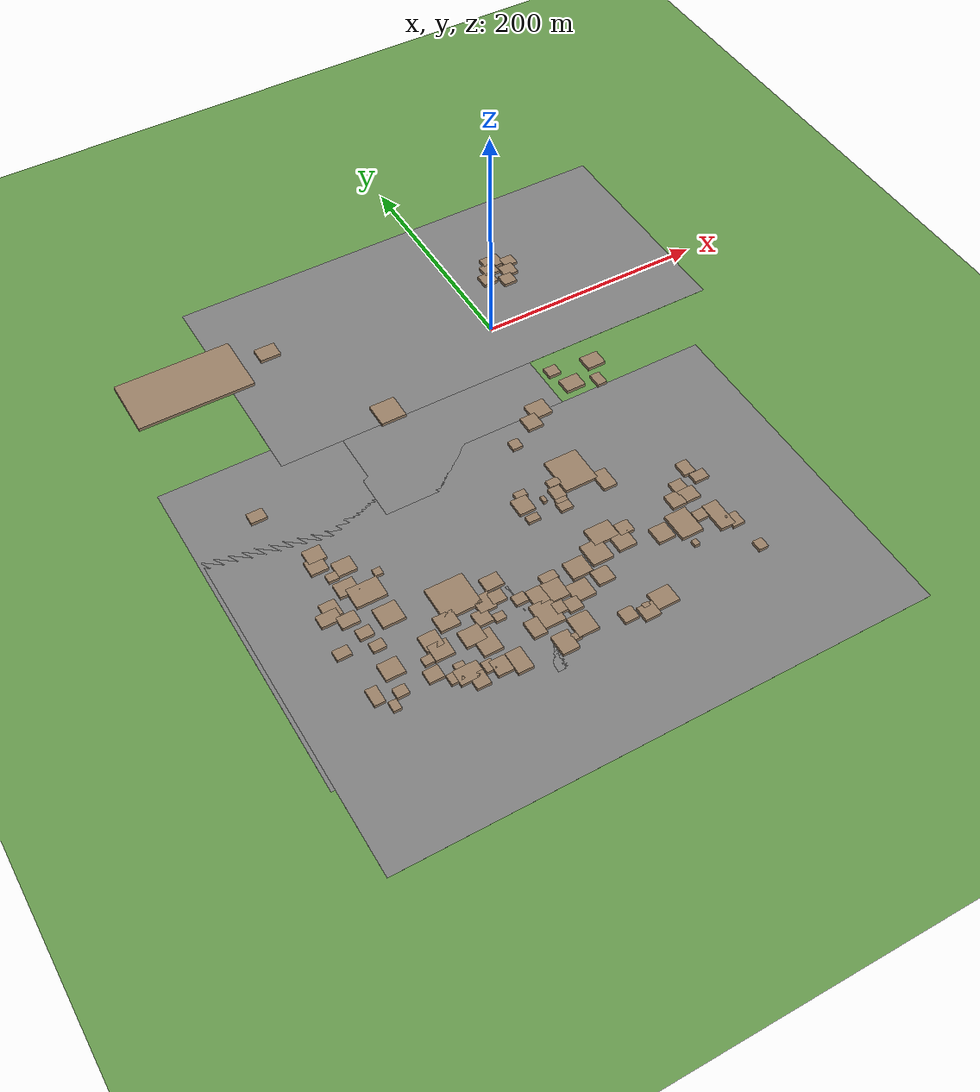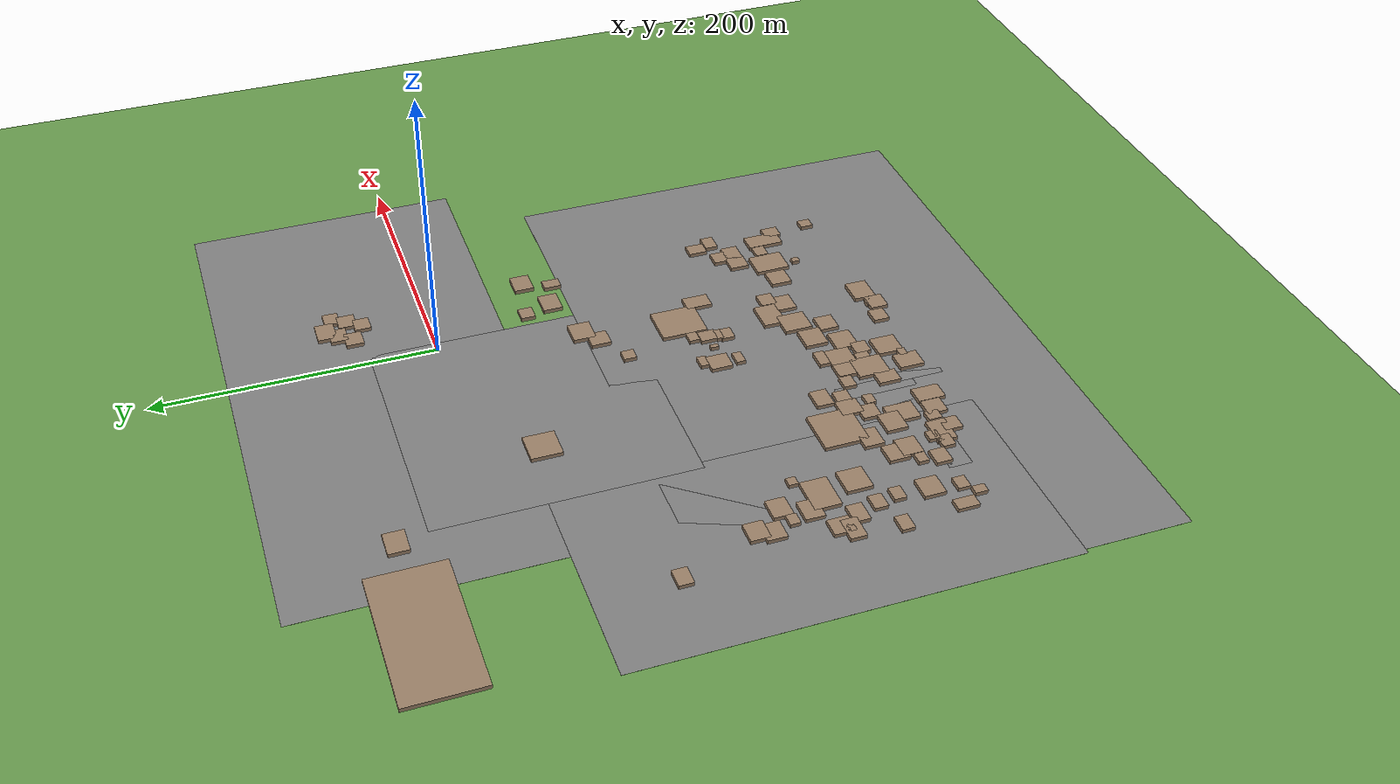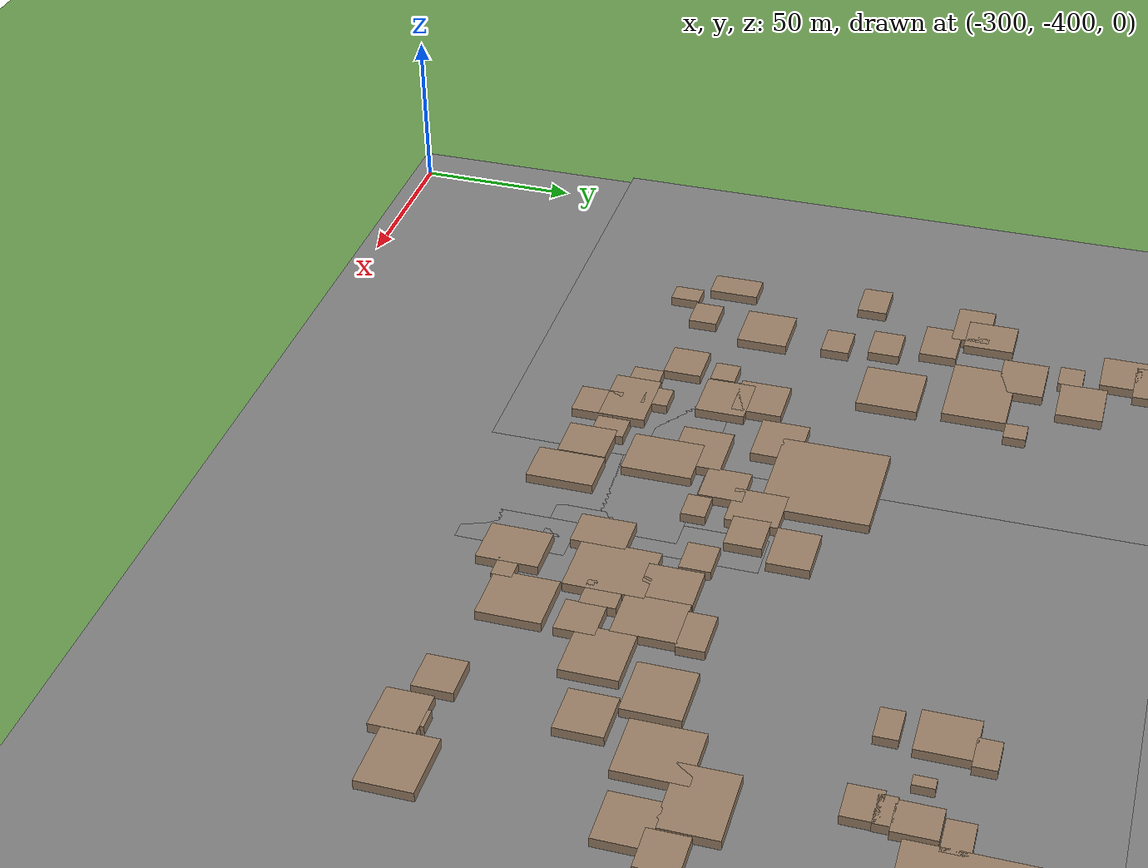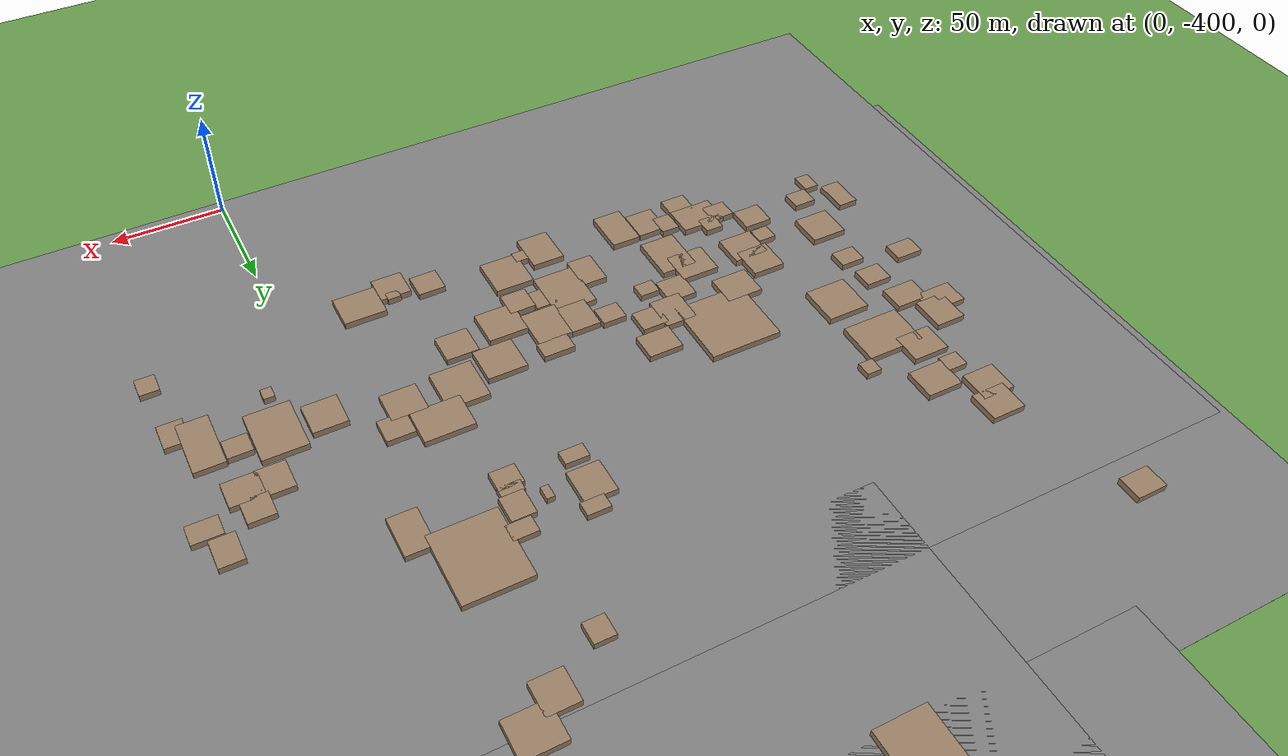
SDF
<sdf version="1.9">
 <world name="kimje_farmland">
  <model name="ground_plane">
   <static>true</static>
   <link name="link">
    <collision name="collision">
     <geometry><plane><normal>0 0 1</normal><size>2000 2000</size></plane></geometry>
    </collision>
    <visual name="visual">
     <geometry><plane><normal>0 0 1</normal><size>2000 2000</size></plane></geometry>
     <material><ambient>0.4 0.6 0.3 1</ambient><diffuse>0.4 0.6 0.3 1</diffuse></material>
    </visual>
   </link>
  </model>
  <model name="osm_5">
   <static>true</static>
   <pose>-86.99 -253.93 0.040 0 0 0</pose>
   <link name="link">
    <collision name="collision"><geometry><box><size>451.55 303.87 0.080</size></box></geometry></collision>
    <visual name="visual">
     <geometry><box><size>451.55 303.87 0.080</size></box></geometry>
     <material><ambient>0.5 0.5 0.5 1</ambient><diffuse>0.5 0.5 0.5 1</diffuse></material>
    </visual>
   </link>
  </model>
  <model name="osm_13">
   <static>true</static>
   <pose>-18.24 48.11 0.040 0 0 0</pose>
   <link name="link">
    <collision name="collision"><geometry><box><size>402.49 196.32 0.080</size></box></geometry></collision>
    <visual name="visual">
     <geometry><box><size>402.49 196.32 0.080</size></box></geometry>
     <material><ambient>0.5 0.5 0.5 1</ambient><diffuse>0.5 0.5 0.5 1</diffuse></material>
    </visual>
   </link>
  </model>
  <model name="osm_58">
   <static>true</static>
   <pose>-176.56 -283.62 0.040 0 0 0</pose>
   <link name="link">
    <collision name="collision"><geometry><box><size>89.69 36.30 0.080</size></box></geometry></collision>
    <visual name="visual">
     <geometry><box><size>89.69 36.30 0.080</size></box></geometry>
     <material><ambient>0.5 0.5 0.5 1</ambient><diffuse>0.5 0.5 0.5 1</diffuse></material>
    </visual>
   </link>
  </model>
  <model name="osm_63">
   <static>true</static>
   <pose>-240.82 -180.44 0.040 0 0 0</pose>
   <link name="link">
    <collision name="collision"><geometry><box><size>150.24 300.62 0.080</size></box></geometry></collision>
    <visual name="visual">
     <geometry><box><size>150.24 300.62 0.080</size></box></geometry>
     <material><ambient>0.5 0.5 0.5 1</ambient><diffuse>0.5 0.5 0.5 1</diffuse></material>
    </visual>
   </link>
  </model>
  <model name="osm_90">
   <static>true</static>
   <pose>-81.72 -44.00 0.040 0 0 0</pose>
   <link name="link">
    <collision name="collision"><geometry><box><size>178.89 182.53 0.080</size></box></geometry></collision>
    <visual name="visual">
     <geometry><box><size>178.89 182.53 0.080</size></box></geometry>
     <material><ambient>0.5 0.5 0.5 1</ambient><diffuse>0.5 0.5 0.5 1</diffuse></material>
    </visual>
   </link>
  </model>
  <model name="osm_119">
   <static>true</static>
   <pose>-125.84 -309.64 0.040 0 0 0</pose>
   <link name="link">
    <collision name="collision"><geometry><box><size>14.23 31.51 0.080</size></box></geometry></collision>
    <visual name="visual">
     <geometry><box><size>14.23 31.51 0.080</size></box></geometry>
     <material><ambient>0.5 0.5 0.5 1</ambient><diffuse>0.5 0.5 0.5 1</diffuse></material>
    </visual>
   </link>
  </model>
  <model name="osm_120">
   <static>true</static>
   <pose>-132.73 -271.68 0.040 0 0 0</pose>
   <link name="link">
    <collision name="collision"><geometry><box><size>13.80 61.15 0.080</size></box></geometry></collision>
    <visual name="visual">
     <geometry><box><size>13.80 61.15 0.080</size></box></geometry>
     <material><ambient>0.5 0.5 0.5 1</ambient><diffuse>0.5 0.5 0.5 1</diffuse></material>
    </visual>
   </link>
  </model>
  <model name="osm_140">
   <static>true</static>
   <pose>-250.95 67.74 1.500 0 0 0</pose>
   <link name="link">
    <collision name="collision"><geometry><box><size>101.71 53.53 3.000</size></box></geometry></collision>
    <visual name="visual">
     <geometry><box><size>101.71 53.53 3.000</size></box></geometry>
     <material><ambient>0.6 0.5 0.4 1</ambient><diffuse>0.6 0.5 0.4 1</diffuse></material>
    </visual>
   </link>
  </model>
  <model name="osm_542">
   <static>true</static>
   <pose>-176.11 68.46 1.500 0 0 0</pose>
   <link name="link">
    <collision name="collision"><geometry><box><size>18.13 14.38 3.000</size></box></geometry></collision>
    <visual name="visual">
     <geometry><box><size>18.13 14.38 3.000</size></box></geometry>
     <material><ambient>0.6 0.5 0.4 1</ambient><diffuse>0.6 0.5 0.4 1</diffuse></material>
    </visual>
   </link>
  </model>
  <model name="osm_545">
   <static>true</static>
   <pose>41.44 71.57 1.500 0 0 0</pose>
   <link name="link">
    <collision name="collision"><geometry><box><size>16.90 13.36 3.000</size></box></geometry></collision>
    <visual name="visual">
     <geometry><box><size>16.90 13.36 3.000</size></box></geometry>
     <material><ambient>0.6 0.5 0.4 1</ambient><diffuse>0.6 0.5 0.4 1</diffuse></material>
    </visual>
   </link>
  </model>
  <model name="osm_547">
   <static>true</static>
   <pose>34.76 63.75 1.500 0 0 0</pose>
   <link name="link">
    <collision name="collision"><geometry><box><size>13.43 12.23 3.000</size></box></geometry></collision>
    <visual name="visual">
     <geometry><box><size>13.43 12.23 3.000</size></box></geometry>
     <material><ambient>0.6 0.5 0.4 1</ambient><diffuse>0.6 0.5 0.4 1</diffuse></material>
    </visual>
   </link>
  </model>
  <model name="osm_548">
   <static>true</static>
   <pose>27.81 54.00 1.500 0 0 0</pose>
   <link name="link">
    <collision name="collision"><geometry><box><size>13.41 12.50 3.000</size></box></geometry></collision>
    <visual name="visual">
     <geometry><box><size>13.41 12.50 3.000</size></box></geometry>
     <material><ambient>0.6 0.5 0.4 1</ambient><diffuse>0.6 0.5 0.4 1</diffuse></material>
    </visual>
   </link>
  </model>
  <model name="osm_550">
   <static>true</static>
   <pose>54.67 65.28 1.500 0 0 0</pose>
   <link name="link">
    <collision name="collision"><geometry><box><size>11.88 10.88 3.000</size></box></geometry></collision>
    <visual name="visual">
     <geometry><box><size>11.88 10.88 3.000</size></box></geometry>
     <material><ambient>0.6 0.5 0.4 1</ambient><diffuse>0.6 0.5 0.4 1</diffuse></material>
    </visual>
   </link>
  </model>
  <model name="osm_551">
   <static>true</static>
   <pose>48.82 55.38 1.500 0 0 0</pose>
   <link name="link">
    <collision name="collision"><geometry><box><size>13.06 12.61 3.000</size></box></geometry></collision>
    <visual name="visual">
     <geometry><box><size>13.06 12.61 3.000</size></box></geometry>
     <material><ambient>0.6 0.5 0.4 1</ambient><diffuse>0.6 0.5 0.4 1</diffuse></material>
    </visual>
   </link>
  </model>
  <model name="osm_552">
   <static>true</static>
   <pose>42.54 45.43 1.500 0 0 0</pose>
   <link name="link">
    <collision name="collision"><geometry><box><size>12.13 11.61 3.000</size></box></geometry></collision>
    <visual name="visual">
     <geometry><box><size>12.13 11.61 3.000</size></box></geometry>
     <material><ambient>0.6 0.5 0.4 1</ambient><diffuse>0.6 0.5 0.4 1</diffuse></material>
    </visual>
   </link>
  </model>
  <model name="osm_582">
   <static>true</static>
   <pose>-258.33 -88.30 1.500 0 0 0</pose>
   <link name="link">
    <collision name="collision"><geometry><box><size>13.57 10.41 3.000</size></box></geometry></collision>
    <visual name="visual">
     <geometry><box><size>13.57 10.41 3.000</size></box></geometry>
     <material><ambient>0.6 0.5 0.4 1</ambient><diffuse>0.6 0.5 0.4 1</diffuse></material>
    </visual>
   </link>
  </model>
  <model name="osm_586">
   <static>true</static>
   <pose>-120.45 -41.31 1.500 0 0 0</pose>
   <link name="link">
    <collision name="collision"><geometry><box><size>22.05 22.01 3.000</size></box></geometry></collision>
    <visual name="visual">
     <geometry><box><size>22.05 22.01 3.000</size></box></geometry>
     <material><ambient>0.6 0.5 0.4 1</ambient><diffuse>0.6 0.5 0.4 1</diffuse></material>
    </visual>
   </link>
  </model>
  <model name="osm_587">
   <static>true</static>
   <pose>17.71 -69.66 1.500 0 0 0</pose>
   <link name="link">
    <collision name="collision"><geometry><box><size>11.02 10.27 3.000</size></box></geometry></collision>
    <visual name="visual">
     <geometry><box><size>11.02 10.27 3.000</size></box></geometry>
     <material><ambient>0.6 0.5 0.4 1</ambient><diffuse>0.6 0.5 0.4 1</diffuse></material>
    </visual>
   </link>
  </model>
  <model name="osm_588">
   <static>true</static>
   <pose>52.99 -75.82 1.500 0 0 0</pose>
   <link name="link">
    <collision name="collision"><geometry><box><size>16.47 14.05 3.000</size></box></geometry></collision>
    <visual name="visual">
     <geometry><box><size>16.47 14.05 3.000</size></box></geometry>
     <material><ambient>0.6 0.5 0.4 1</ambient><diffuse>0.6 0.5 0.4 1</diffuse></material>
    </visual>
   </link>
  </model>
  <model name="osm_589">
   <static>true</static>
   <pose>45.76 -96.53 1.500 0 0 0</pose>
   <link name="link">
    <collision name="collision"><geometry><box><size>8.71 12.59 3.000</size></box></geometry></collision>
    <visual name="visual">
     <geometry><box><size>8.71 12.59 3.000</size></box></geometry>
     <material><ambient>0.6 0.5 0.4 1</ambient><diffuse>0.6 0.5 0.4 1</diffuse></material>
    </visual>
   </link>
  </model>
  <model name="osm_590">
   <static>true</static>
   <pose>24.68 -89.26 1.500 0 0 0</pose>
   <link name="link">
    <collision name="collision"><geometry><box><size>17.26 13.97 3.000</size></box></geometry></collision>
    <visual name="visual">
     <geometry><box><size>17.26 13.97 3.000</size></box></geometry>
     <material><ambient>0.6 0.5 0.4 1</ambient><diffuse>0.6 0.5 0.4 1</diffuse></material>
    </visual>
   </link>
  </model>
  <model name="osm_591">
   <static>true</static>
   <pose>-14.75 -100.88 1.500 0 0 0</pose>
   <link name="link">
    <collision name="collision"><geometry><box><size>17.67 16.23 3.000</size></box></geometry></collision>
    <visual name="visual">
     <geometry><box><size>17.67 16.23 3.000</size></box></geometry>
     <material><ambient>0.6 0.5 0.4 1</ambient><diffuse>0.6 0.5 0.4 1</diffuse></material>
    </visual>
   </link>
  </model>
  <model name="osm_592">
   <static>true</static>
   <pose>-26.34 -110.19 1.500 0 0 0</pose>
   <link name="link">
    <collision name="collision"><geometry><box><size>13.56 14.28 3.000</size></box></geometry></collision>
    <visual name="visual">
     <geometry><box><size>13.56 14.28 3.000</size></box></geometry>
     <material><ambient>0.6 0.5 0.4 1</ambient><diffuse>0.6 0.5 0.4 1</diffuse></material>
    </visual>
   </link>
  </model>
  <model name="osm_609">
   <static>true</static>
   <pose>-237.07 -144.46 1.500 0 0 0</pose>
   <link name="link">
    <collision name="collision"><geometry><box><size>15.07 13.59 3.000</size></box></geometry></collision>
    <visual name="visual">
     <geometry><box><size>15.07 13.59 3.000</size></box></geometry>
     <material><ambient>0.6 0.5 0.4 1</ambient><diffuse>0.6 0.5 0.4 1</diffuse></material>
    </visual>
   </link>
  </model>
  <model name="osm_610">
   <static>true</static>
   <pose>-240.28 -154.42 1.500 0 0 0</pose>
   <link name="link">
    <collision name="collision"><geometry><box><size>14.50 13.81 3.000</size></box></geometry></collision>
    <visual name="visual">
     <geometry><box><size>14.50 13.81 3.000</size></box></geometry>
     <material><ambient>0.6 0.5 0.4 1</ambient><diffuse>0.6 0.5 0.4 1</diffuse></material>
    </visual>
   </link>
  </model>
  <model name="osm_611">
   <static>true</static>
   <pose>-222.67 -165.51 1.500 0 0 0</pose>
   <link name="link">
    <collision name="collision"><geometry><box><size>15.79 13.74 3.000</size></box></geometry></collision>
    <visual name="visual">
     <geometry><box><size>15.79 13.74 3.000</size></box></geometry>
     <material><ambient>0.6 0.5 0.4 1</ambient><diffuse>0.6 0.5 0.4 1</diffuse></material>
    </visual>
   </link>
  </model>
  <model name="osm_612">
   <static>true</static>
   <pose>-234.74 -169.87 1.500 0 0 0</pose>
   <link name="link">
    <collision name="collision"><geometry><box><size>8.64 7.35 3.000</size></box></geometry></collision>
    <visual name="visual">
     <geometry><box><size>8.64 7.35 3.000</size></box></geometry>
     <material><ambient>0.6 0.5 0.4 1</ambient><diffuse>0.6 0.5 0.4 1</diffuse></material>
    </visual>
   </link>
  </model>
  <model name="osm_613">
   <static>true</static>
   <pose>-230.11 -183.83 1.500 0 0 0</pose>
   <link name="link">
    <collision name="collision"><geometry><box><size>16.26 13.55 3.000</size></box></geometry></collision>
    <visual name="visual">
     <geometry><box><size>16.26 13.55 3.000</size></box></geometry>
     <material><ambient>0.6 0.5 0.4 1</ambient><diffuse>0.6 0.5 0.4 1</diffuse></material>
    </visual>
   </link>
  </model>
  <model name="osm_614">
   <static>true</static>
   <pose>-219.10 -195.26 1.500 0 0 0</pose>
   <link name="link">
    <collision name="collision"><geometry><box><size>25.57 18.97 3.000</size></box></geometry></collision>
    <visual name="visual">
     <geometry><box><size>25.57 18.97 3.000</size></box></geometry>
     <material><ambient>0.6 0.5 0.4 1</ambient><diffuse>0.6 0.5 0.4 1</diffuse></material>
    </visual>
   </link>
  </model>
  <model name="osm_615">
   <static>true</static>
   <pose>-203.22 -182.41 1.500 0 0 0</pose>
   <link name="link">
    <collision name="collision"><geometry><box><size>6.63 6.62 3.000</size></box></geometry></collision>
    <visual name="visual">
     <geometry><box><size>6.63 6.62 3.000</size></box></geometry>
     <material><ambient>0.6 0.5 0.4 1</ambient><diffuse>0.6 0.5 0.4 1</diffuse></material>
    </visual>
   </link>
  </model>
  <model name="osm_616">
   <static>true</static>
   <pose>-249.05 -196.23 1.500 0 0 0</pose>
   <link name="link">
    <collision name="collision"><geometry><box><size>13.21 15.06 3.000</size></box></geometry></collision>
    <visual name="visual">
     <geometry><box><size>13.21 15.06 3.000</size></box></geometry>
     <material><ambient>0.6 0.5 0.4 1</ambient><diffuse>0.6 0.5 0.4 1</diffuse></material>
    </visual>
   </link>
  </model>
  <model name="osm_619">
   <static>true</static>
   <pose>-50.09 -124.39 1.500 0 0 0</pose>
   <link name="link">
    <collision name="collision"><geometry><box><size>8.97 9.44 3.000</size></box></geometry></collision>
    <visual name="visual">
     <geometry><box><size>8.97 9.44 3.000</size></box></geometry>
     <material><ambient>0.6 0.5 0.4 1</ambient><diffuse>0.6 0.5 0.4 1</diffuse></material>
    </visual>
   </link>
  </model>
  <model name="osm_620">
   <static>true</static>
   <pose>-26.59 -169.93 1.500 0 0 0</pose>
   <link name="link">
    <collision name="collision"><geometry><box><size>28.82 33.17 3.000</size></box></geometry></collision>
    <visual name="visual">
     <geometry><box><size>28.82 33.17 3.000</size></box></geometry>
     <material><ambient>0.6 0.5 0.4 1</ambient><diffuse>0.6 0.5 0.4 1</diffuse></material>
    </visual>
   </link>
  </model>
  <model name="osm_621">
   <static>true</static>
   <pose>-8.57 -190.50 1.500 0 0 0</pose>
   <link name="link">
    <collision name="collision"><geometry><box><size>12.25 18.74 3.000</size></box></geometry></collision>
    <visual name="visual">
     <geometry><box><size>12.25 18.74 3.000</size></box></geometry>
     <material><ambient>0.6 0.5 0.4 1</ambient><diffuse>0.6 0.5 0.4 1</diffuse></material>
    </visual>
   </link>
  </model>
  <model name="osm_622">
   <static>true</static>
   <pose>-44.78 -173.75 1.500 0 0 0</pose>
   <link name="link">
    <collision name="collision"><geometry><box><size>10.58 7.57 3.000</size></box></geometry></collision>
    <visual name="visual">
     <geometry><box><size>10.58 7.57 3.000</size></box></geometry>
     <material><ambient>0.6 0.5 0.4 1</ambient><diffuse>0.6 0.5 0.4 1</diffuse></material>
    </visual>
   </link>
  </model>
  <model name="osm_623">
   <static>true</static>
   <pose>-47.66 -183.88 1.500 0 0 0</pose>
   <link name="link">
    <collision name="collision"><geometry><box><size>10.36 11.92 3.000</size></box></geometry></collision>
    <visual name="visual">
     <geometry><box><size>10.36 11.92 3.000</size></box></geometry>
     <material><ambient>0.6 0.5 0.4 1</ambient><diffuse>0.6 0.5 0.4 1</diffuse></material>
    </visual>
   </link>
  </model>
  <model name="osm_624">
   <static>true</static>
   <pose>-48.66 -191.85 1.500 0 0 0</pose>
   <link name="link">
    <collision name="collision"><geometry><box><size>9.67 4.93 3.000</size></box></geometry></collision>
    <visual name="visual">
     <geometry><box><size>9.67 4.93 3.000</size></box></geometry>
     <material><ambient>0.6 0.5 0.4 1</ambient><diffuse>0.6 0.5 0.4 1</diffuse></material>
    </visual>
   </link>
  </model>
  <model name="osm_625">
   <static>true</static>
   <pose>-49.40 -197.41 1.500 0 0 0</pose>
   <link name="link">
    <collision name="collision"><geometry><box><size>10.77 9.54 3.000</size></box></geometry></collision>
    <visual name="visual">
     <geometry><box><size>10.77 9.54 3.000</size></box></geometry>
     <material><ambient>0.6 0.5 0.4 1</ambient><diffuse>0.6 0.5 0.4 1</diffuse></material>
    </visual>
   </link>
  </model>
  <model name="osm_626">
   <static>true</static>
   <pose>-73.15 -171.13 1.500 0 0 0</pose>
   <link name="link">
    <collision name="collision"><geometry><box><size>9.99 6.48 3.000</size></box></geometry></collision>
    <visual name="visual">
     <geometry><box><size>9.99 6.48 3.000</size></box></geometry>
     <material><ambient>0.6 0.5 0.4 1</ambient><diffuse>0.6 0.5 0.4 1</diffuse></material>
    </visual>
   </link>
  </model>
  <model name="osm_627">
   <static>true</static>
   <pose>-76.95 -181.47 1.500 0 0 0</pose>
   <link name="link">
    <collision name="collision"><geometry><box><size>14.03 15.52 3.000</size></box></geometry></collision>
    <visual name="visual">
     <geometry><box><size>14.03 15.52 3.000</size></box></geometry>
     <material><ambient>0.6 0.5 0.4 1</ambient><diffuse>0.6 0.5 0.4 1</diffuse></material>
    </visual>
   </link>
  </model>
  <model name="osm_628">
   <static>true</static>
   <pose>-76.92 -196.13 1.500 0 0 0</pose>
   <link name="link">
    <collision name="collision"><geometry><box><size>10.40 6.55 3.000</size></box></geometry></collision>
    <visual name="visual">
     <geometry><box><size>10.40 6.55 3.000</size></box></geometry>
     <material><ambient>0.6 0.5 0.4 1</ambient><diffuse>0.6 0.5 0.4 1</diffuse></material>
    </visual>
   </link>
  </model>
  <model name="osm_629">
   <static>true</static>
   <pose>-60.06 -184.46 1.500 0 0 0</pose>
   <link name="link">
    <collision name="collision"><geometry><box><size>3.41 5.99 3.000</size></box></geometry></collision>
    <visual name="visual">
     <geometry><box><size>3.41 5.99 3.000</size></box></geometry>
     <material><ambient>0.6 0.5 0.4 1</ambient><diffuse>0.6 0.5 0.4 1</diffuse></material>
    </visual>
   </link>
  </model>
  <model name="osm_640">
   <static>true</static>
   <pose>57.14 -224.79 1.500 0 0 0</pose>
   <link name="link">
    <collision name="collision"><geometry><box><size>12.70 9.33 3.000</size></box></geometry></collision>
    <visual name="visual">
     <geometry><box><size>12.70 9.33 3.000</size></box></geometry>
     <material><ambient>0.6 0.5 0.4 1</ambient><diffuse>0.6 0.5 0.4 1</diffuse></material>
    </visual>
   </link>
  </model>
  <model name="osm_641">
   <static>true</static>
   <pose>52.37 -212.74 1.500 0 0 0</pose>
   <link name="link">
    <collision name="collision"><geometry><box><size>10.29 13.53 3.000</size></box></geometry></collision>
    <visual name="visual">
     <geometry><box><size>10.29 13.53 3.000</size></box></geometry>
     <material><ambient>0.6 0.5 0.4 1</ambient><diffuse>0.6 0.5 0.4 1</diffuse></material>
    </visual>
   </link>
  </model>
  <model name="osm_642">
   <static>true</static>
   <pose>39.29 -236.38 1.500 0 0 0</pose>
   <link name="link">
    <collision name="collision"><geometry><box><size>14.25 12.43 3.000</size></box></geometry></collision>
    <visual name="visual">
     <geometry><box><size>14.25 12.43 3.000</size></box></geometry>
     <material><ambient>0.6 0.5 0.4 1</ambient><diffuse>0.6 0.5 0.4 1</diffuse></material>
    </visual>
   </link>
  </model>
  <model name="osm_643">
   <static>true</static>
   <pose>36.92 -225.80 1.500 0 0 0</pose>
   <link name="link">
    <collision name="collision"><geometry><box><size>11.36 11.35 3.000</size></box></geometry></collision>
    <visual name="visual">
     <geometry><box><size>11.36 11.35 3.000</size></box></geometry>
     <material><ambient>0.6 0.5 0.4 1</ambient><diffuse>0.6 0.5 0.4 1</diffuse></material>
    </visual>
   </link>
  </model>
  <model name="osm_644">
   <static>true</static>
   <pose>27.26 -236.04 1.500 0 0 0</pose>
   <link name="link">
    <collision name="collision"><geometry><box><size>12.69 13.71 3.000</size></box></geometry></collision>
    <visual name="visual">
     <geometry><box><size>12.69 13.71 3.000</size></box></geometry>
     <material><ambient>0.6 0.5 0.4 1</ambient><diffuse>0.6 0.5 0.4 1</diffuse></material>
    </visual>
   </link>
  </model>
  <model name="osm_645">
   <static>true</static>
   <pose>-22.16 -239.29 1.500 0 0 0</pose>
   <link name="link">
    <collision name="collision"><geometry><box><size>12.25 11.42 3.000</size></box></geometry></collision>
    <visual name="visual">
     <geometry><box><size>12.25 11.42 3.000</size></box></geometry>
     <material><ambient>0.6 0.5 0.4 1</ambient><diffuse>0.6 0.5 0.4 1</diffuse></material>
    </visual>
   </link>
  </model>
  <model name="osm_646">
   <static>true</static>
   <pose>-29.32 -249.79 1.500 0 0 0</pose>
   <link name="link">
    <collision name="collision"><geometry><box><size>15.44 14.20 3.000</size></box></geometry></collision>
    <visual name="visual">
     <geometry><box><size>15.44 14.20 3.000</size></box></geometry>
     <material><ambient>0.6 0.5 0.4 1</ambient><diffuse>0.6 0.5 0.4 1</diffuse></material>
    </visual>
   </link>
  </model>
  <model name="osm_647">
   <static>true</static>
   <pose>-39.59 -235.01 1.500 0 0 0</pose>
   <link name="link">
    <collision name="collision"><geometry><box><size>21.61 16.48 3.000</size></box></geometry></collision>
    <visual name="visual">
     <geometry><box><size>21.61 16.48 3.000</size></box></geometry>
     <material><ambient>0.6 0.5 0.4 1</ambient><diffuse>0.6 0.5 0.4 1</diffuse></material>
    </visual>
   </link>
  </model>
  <model name="osm_648">
   <static>true</static>
   <pose>-52.46 -248.43 1.500 0 0 0</pose>
   <link name="link">
    <collision name="collision"><geometry><box><size>18.10 20.23 3.000</size></box></geometry></collision>
    <visual name="visual">
     <geometry><box><size>18.10 20.23 3.000</size></box></geometry>
     <material><ambient>0.6 0.5 0.4 1</ambient><diffuse>0.6 0.5 0.4 1</diffuse></material>
    </visual>
   </link>
  </model>
  <model name="osm_649">
   <static>true</static>
   <pose>-134.87 -233.26 1.500 0 0 0</pose>
   <link name="link">
    <collision name="collision"><geometry><box><size>15.23 12.32 3.000</size></box></geometry></collision>
    <visual name="visual">
     <geometry><box><size>15.23 12.32 3.000</size></box></geometry>
     <material><ambient>0.6 0.5 0.4 1</ambient><diffuse>0.6 0.5 0.4 1</diffuse></material>
    </visual>
   </link>
  </model>
  <model name="osm_650">
   <static>true</static>
   <pose>-149.14 -247.08 1.500 0 0 0</pose>
   <link name="link">
    <collision name="collision"><geometry><box><size>13.99 15.27 3.000</size></box></geometry></collision>
    <visual name="visual">
     <geometry><box><size>13.99 15.27 3.000</size></box></geometry>
     <material><ambient>0.6 0.5 0.4 1</ambient><diffuse>0.6 0.5 0.4 1</diffuse></material>
    </visual>
   </link>
  </model>
  <model name="osm_651">
   <static>true</static>
   <pose>-138.28 -247.07 1.500 0 0 0</pose>
   <link name="link">
    <collision name="collision"><geometry><box><size>11.76 10.74 3.000</size></box></geometry></collision>
    <visual name="visual">
     <geometry><box><size>11.76 10.74 3.000</size></box></geometry>
     <material><ambient>0.6 0.5 0.4 1</ambient><diffuse>0.6 0.5 0.4 1</diffuse></material>
    </visual>
   </link>
  </model>
  <model name="osm_652">
   <static>true</static>
   <pose>-165.99 -231.03 1.500 0 0 0</pose>
   <link name="link">
    <collision name="collision"><geometry><box><size>32.02 31.39 3.000</size></box></geometry></collision>
    <visual name="visual">
     <geometry><box><size>32.02 31.39 3.000</size></box></geometry>
     <material><ambient>0.6 0.5 0.4 1</ambient><diffuse>0.6 0.5 0.4 1</diffuse></material>
    </visual>
   </link>
  </model>
  <model name="osm_653">
   <static>true</static>
   <pose>-180.93 -247.57 1.500 0 0 0</pose>
   <link name="link">
    <collision name="collision"><geometry><box><size>16.27 14.12 3.000</size></box></geometry></collision>
    <visual name="visual">
     <geometry><box><size>16.27 14.12 3.000</size></box></geometry>
     <material><ambient>0.6 0.5 0.4 1</ambient><diffuse>0.6 0.5 0.4 1</diffuse></material>
    </visual>
   </link>
  </model>
  <model name="osm_654">
   <static>true</static>
   <pose>-214.09 -221.02 1.500 0 0 0</pose>
   <link name="link">
    <collision name="collision"><geometry><box><size>18.82 18.20 3.000</size></box></geometry></collision>
    <visual name="visual">
     <geometry><box><size>18.82 18.20 3.000</size></box></geometry>
     <material><ambient>0.6 0.5 0.4 1</ambient><diffuse>0.6 0.5 0.4 1</diffuse></material>
    </visual>
   </link>
  </model>
  <model name="osm_655">
   <static>true</static>
   <pose>-242.07 -210.67 1.500 0 0 0</pose>
   <link name="link">
    <collision name="collision"><geometry><box><size>14.92 11.21 3.000</size></box></geometry></collision>
    <visual name="visual">
     <geometry><box><size>14.92 11.21 3.000</size></box></geometry>
     <material><ambient>0.6 0.5 0.4 1</ambient><diffuse>0.6 0.5 0.4 1</diffuse></material>
    </visual>
   </link>
  </model>
  <model name="osm_656">
   <static>true</static>
   <pose>-236.88 -226.78 1.500 0 0 0</pose>
   <link name="link">
    <collision name="collision"><geometry><box><size>11.75 9.56 3.000</size></box></geometry></collision>
    <visual name="visual">
     <geometry><box><size>11.75 9.56 3.000</size></box></geometry>
     <material><ambient>0.6 0.5 0.4 1</ambient><diffuse>0.6 0.5 0.4 1</diffuse></material>
    </visual>
   </link>
  </model>
  <model name="osm_657">
   <static>true</static>
   <pose>-234.05 -241.48 1.500 0 0 0</pose>
   <link name="link">
    <collision name="collision"><geometry><box><size>10.86 8.52 3.000</size></box></geometry></collision>
    <visual name="visual">
     <geometry><box><size>10.86 8.52 3.000</size></box></geometry>
     <material><ambient>0.6 0.5 0.4 1</ambient><diffuse>0.6 0.5 0.4 1</diffuse></material>
    </visual>
   </link>
  </model>
  <model name="osm_658">
   <static>true</static>
   <pose>-253.65 -202.33 1.500 0 0 0</pose>
   <link name="link">
    <collision name="collision"><geometry><box><size>16.85 11.34 3.000</size></box></geometry></collision>
    <visual name="visual">
     <geometry><box><size>16.85 11.34 3.000</size></box></geometry>
     <material><ambient>0.6 0.5 0.4 1</ambient><diffuse>0.6 0.5 0.4 1</diffuse></material>
    </visual>
   </link>
  </model>
  <model name="osm_661">
   <static>true</static>
   <pose>-259.04 -234.52 1.500 0 0 0</pose>
   <link name="link">
    <collision name="collision"><geometry><box><size>12.26 9.05 3.000</size></box></geometry></collision>
    <visual name="visual">
     <geometry><box><size>12.26 9.05 3.000</size></box></geometry>
     <material><ambient>0.6 0.5 0.4 1</ambient><diffuse>0.6 0.5 0.4 1</diffuse></material>
    </visual>
   </link>
  </model>
  <model name="osm_741">
   <static>true</static>
   <pose>-255.39 -278.94 1.500 0 0 0</pose>
   <link name="link">
    <collision name="collision"><geometry><box><size>9.04 15.13 3.000</size></box></geometry></collision>
    <visual name="visual">
     <geometry><box><size>9.04 15.13 3.000</size></box></geometry>
     <material><ambient>0.6 0.5 0.4 1</ambient><diffuse>0.6 0.5 0.4 1</diffuse></material>
    </visual>
   </link>
  </model>
  <model name="osm_742">
   <static>true</static>
   <pose>-235.01 -264.15 1.500 0 0 0</pose>
   <link name="link">
    <collision name="collision"><geometry><box><size>16.05 15.25 3.000</size></box></geometry></collision>
    <visual name="visual">
     <geometry><box><size>16.05 15.25 3.000</size></box></geometry>
     <material><ambient>0.6 0.5 0.4 1</ambient><diffuse>0.6 0.5 0.4 1</diffuse></material>
    </visual>
   </link>
  </model>
  <model name="osm_743">
   <static>true</static>
   <pose>-237.99 -284.48 1.500 0 0 0</pose>
   <link name="link">
    <collision name="collision"><geometry><box><size>10.11 8.77 3.000</size></box></geometry></collision>
    <visual name="visual">
     <geometry><box><size>10.11 8.77 3.000</size></box></geometry>
     <material><ambient>0.6 0.5 0.4 1</ambient><diffuse>0.6 0.5 0.4 1</diffuse></material>
    </visual>
   </link>
  </model>
  <model name="osm_744">
   <static>true</static>
   <pose>-247.06 -292.91 1.500 0 0 0</pose>
   <link name="link">
    <collision name="collision"><geometry><box><size>6.60 8.87 3.000</size></box></geometry></collision>
    <visual name="visual">
     <geometry><box><size>6.60 8.87 3.000</size></box></geometry>
     <material><ambient>0.6 0.5 0.4 1</ambient><diffuse>0.6 0.5 0.4 1</diffuse></material>
    </visual>
   </link>
  </model>
  <model name="osm_746">
   <static>true</static>
   <pose>-209.06 -270.96 1.500 0 0 0</pose>
   <link name="link">
    <collision name="collision"><geometry><box><size>8.23 7.51 3.000</size></box></geometry></collision>
    <visual name="visual">
     <geometry><box><size>8.23 7.51 3.000</size></box></geometry>
     <material><ambient>0.6 0.5 0.4 1</ambient><diffuse>0.6 0.5 0.4 1</diffuse></material>
    </visual>
   </link>
  </model>
  <model name="osm_747">
   <static>true</static>
   <pose>-211.27 -283.55 1.500 0 0 0</pose>
   <link name="link">
    <collision name="collision"><geometry><box><size>12.59 11.37 3.000</size></box></geometry></collision>
    <visual name="visual">
     <geometry><box><size>12.59 11.37 3.000</size></box></geometry>
     <material><ambient>0.6 0.5 0.4 1</ambient><diffuse>0.6 0.5 0.4 1</diffuse></material>
    </visual>
   </link>
  </model>
  <model name="osm_748">
   <static>true</static>
   <pose>-196.72 -267.84 1.500 0 0 0</pose>
   <link name="link">
    <collision name="collision"><geometry><box><size>15.72 14.72 3.000</size></box></geometry></collision>
    <visual name="visual">
     <geometry><box><size>15.72 14.72 3.000</size></box></geometry>
     <material><ambient>0.6 0.5 0.4 1</ambient><diffuse>0.6 0.5 0.4 1</diffuse></material>
    </visual>
   </link>
  </model>
  <model name="osm_749">
   <static>true</static>
   <pose>-199.12 -257.52 1.500 0 0 0</pose>
   <link name="link">
    <collision name="collision"><geometry><box><size>14.60 14.92 3.000</size></box></geometry></collision>
    <visual name="visual">
     <geometry><box><size>14.60 14.92 3.000</size></box></geometry>
     <material><ambient>0.6 0.5 0.4 1</ambient><diffuse>0.6 0.5 0.4 1</diffuse></material>
    </visual>
   </link>
  </model>
  <model name="osm_750">
   <static>true</static>
   <pose>-171.20 -268.51 1.500 0 0 0</pose>
   <link name="link">
    <collision name="collision"><geometry><box><size>17.09 15.03 3.000</size></box></geometry></collision>
    <visual name="visual">
     <geometry><box><size>17.09 15.03 3.000</size></box></geometry>
     <material><ambient>0.6 0.5 0.4 1</ambient><diffuse>0.6 0.5 0.4 1</diffuse></material>
    </visual>
   </link>
  </model>
  <model name="osm_751">
   <static>true</static>
   <pose>-156.90 -258.02 1.500 0 0 0</pose>
   <link name="link">
    <collision name="collision"><geometry><box><size>12.65 12.72 3.000</size></box></geometry></collision>
    <visual name="visual">
     <geometry><box><size>12.65 12.72 3.000</size></box></geometry>
     <material><ambient>0.6 0.5 0.4 1</ambient><diffuse>0.6 0.5 0.4 1</diffuse></material>
    </visual>
   </link>
  </model>
  <model name="osm_752">
   <static>true</static>
   <pose>-164.71 -278.44 1.500 0 0 0</pose>
   <link name="link">
    <collision name="collision"><geometry><box><size>15.89 20.72 3.000</size></box></geometry></collision>
    <visual name="visual">
     <geometry><box><size>15.89 20.72 3.000</size></box></geometry>
     <material><ambient>0.6 0.5 0.4 1</ambient><diffuse>0.6 0.5 0.4 1</diffuse></material>
    </visual>
   </link>
  </model>
  <model name="osm_753">
   <static>true</static>
   <pose>-191.93 -287.62 1.500 0 0 0</pose>
   <link name="link">
    <collision name="collision"><geometry><box><size>8.13 7.88 3.000</size></box></geometry></collision>
    <visual name="visual">
     <geometry><box><size>8.13 7.88 3.000</size></box></geometry>
     <material><ambient>0.6 0.5 0.4 1</ambient><diffuse>0.6 0.5 0.4 1</diffuse></material>
    </visual>
   </link>
  </model>
  <model name="osm_754">
   <static>true</static>
   <pose>-199.23 -293.63 1.500 0 0 0</pose>
   <link name="link">
    <collision name="collision"><geometry><box><size>10.76 9.13 3.000</size></box></geometry></collision>
    <visual name="visual">
     <geometry><box><size>10.76 9.13 3.000</size></box></geometry>
     <material><ambient>0.6 0.5 0.4 1</ambient><diffuse>0.6 0.5 0.4 1</diffuse></material>
    </visual>
   </link>
  </model>
  <model name="osm_755">
   <static>true</static>
   <pose>-189.21 -295.24 1.500 0 0 0</pose>
   <link name="link">
    <collision name="collision"><geometry><box><size>19.69 13.81 3.000</size></box></geometry></collision>
    <visual name="visual">
     <geometry><box><size>19.69 13.81 3.000</size></box></geometry>
     <material><ambient>0.6 0.5 0.4 1</ambient><diffuse>0.6 0.5 0.4 1</diffuse></material>
    </visual>
   </link>
  </model>
  <model name="osm_756">
   <static>true</static>
   <pose>-185.07 -304.18 1.500 0 0 0</pose>
   <link name="link">
    <collision name="collision"><geometry><box><size>11.52 12.76 3.000</size></box></geometry></collision>
    <visual name="visual">
     <geometry><box><size>11.52 12.76 3.000</size></box></geometry>
     <material><ambient>0.6 0.5 0.4 1</ambient><diffuse>0.6 0.5 0.4 1</diffuse></material>
    </visual>
   </link>
  </model>
  <model name="osm_757">
   <static>true</static>
   <pose>-174.08 -296.96 1.500 0 0 0</pose>
   <link name="link">
    <collision name="collision"><geometry><box><size>8.13 9.79 3.000</size></box></geometry></collision>
    <visual name="visual">
     <geometry><box><size>8.13 9.79 3.000</size></box></geometry>
     <material><ambient>0.6 0.5 0.4 1</ambient><diffuse>0.6 0.5 0.4 1</diffuse></material>
    </visual>
   </link>
  </model>
  <model name="osm_758">
   <static>true</static>
   <pose>-166.11 -301.48 1.500 0 0 0</pose>
   <link name="link">
    <collision name="collision"><geometry><box><size>13.07 14.29 3.000</size></box></geometry></collision>
    <visual name="visual">
     <geometry><box><size>13.07 14.29 3.000</size></box></geometry>
     <material><ambient>0.6 0.5 0.4 1</ambient><diffuse>0.6 0.5 0.4 1</diffuse></material>
    </visual>
   </link>
  </model>
  <model name="osm_760">
   <static>true</static>
   <pose>-152.73 -303.94 1.500 0 0 0</pose>
   <link name="link">
    <collision name="collision"><geometry><box><size>13.04 19.71 3.000</size></box></geometry></collision>
    <visual name="visual">
     <geometry><box><size>13.04 19.71 3.000</size></box></geometry>
     <material><ambient>0.6 0.5 0.4 1</ambient><diffuse>0.6 0.5 0.4 1</diffuse></material>
    </visual>
   </link>
  </model>
  <model name="osm_761">
   <static>true</static>
   <pose>-145.66 -263.46 1.500 0 0 0</pose>
   <link name="link">
    <collision name="collision"><geometry><box><size>8.74 6.99 3.000</size></box></geometry></collision>
    <visual name="visual">
     <geometry><box><size>8.74 6.99 3.000</size></box></geometry>
     <material><ambient>0.6 0.5 0.4 1</ambient><diffuse>0.6 0.5 0.4 1</diffuse></material>
    </visual>
   </link>
  </model>
  <model name="osm_763">
   <static>true</static>
   <pose>-124.74 -257.14 1.500 0 0 0</pose>
   <link name="link">
    <collision name="collision"><geometry><box><size>10.55 9.05 3.000</size></box></geometry></collision>
    <visual name="visual">
     <geometry><box><size>10.55 9.05 3.000</size></box></geometry>
     <material><ambient>0.6 0.5 0.4 1</ambient><diffuse>0.6 0.5 0.4 1</diffuse></material>
    </visual>
   </link>
  </model>
  <model name="osm_764">
   <static>true</static>
   <pose>-128.13 -285.25 1.500 0 0 0</pose>
   <link name="link">
    <collision name="collision"><geometry><box><size>11.38 15.74 3.000</size></box></geometry></collision>
    <visual name="visual">
     <geometry><box><size>11.38 15.74 3.000</size></box></geometry>
     <material><ambient>0.6 0.5 0.4 1</ambient><diffuse>0.6 0.5 0.4 1</diffuse></material>
    </visual>
   </link>
  </model>
  <model name="osm_765">
   <static>true</static>
   <pose>-114.10 -278.52 1.500 0 0 0</pose>
   <link name="link">
    <collision name="collision"><geometry><box><size>18.67 22.82 3.000</size></box></geometry></collision>
    <visual name="visual">
     <geometry><box><size>18.67 22.82 3.000</size></box></geometry>
     <material><ambient>0.6 0.5 0.4 1</ambient><diffuse>0.6 0.5 0.4 1</diffuse></material>
    </visual>
   </link>
  </model>
  <model name="osm_766">
   <static>true</static>
   <pose>-112.18 -261.75 1.500 0 0 0</pose>
   <link name="link">
    <collision name="collision"><geometry><box><size>13.09 15.54 3.000</size></box></geometry></collision>
    <visual name="visual">
     <geometry><box><size>13.09 15.54 3.000</size></box></geometry>
     <material><ambient>0.6 0.5 0.4 1</ambient><diffuse>0.6 0.5 0.4 1</diffuse></material>
    </visual>
   </link>
  </model>
  <model name="osm_767">
   <static>true</static>
   <pose>-96.12 -250.44 1.500 0 0 0</pose>
   <link name="link">
    <collision name="collision"><geometry><box><size>13.78 8.02 3.000</size></box></geometry></collision>
    <visual name="visual">
     <geometry><box><size>13.78 8.02 3.000</size></box></geometry>
     <material><ambient>0.6 0.5 0.4 1</ambient><diffuse>0.6 0.5 0.4 1</diffuse></material>
    </visual>
   </link>
  </model>
  <model name="osm_768">
   <static>true</static>
   <pose>-98.23 -263.29 1.500 0 0 0</pose>
   <link name="link">
    <collision name="collision"><geometry><box><size>15.71 18.19 3.000</size></box></geometry></collision>
    <visual name="visual">
     <geometry><box><size>15.71 18.19 3.000</size></box></geometry>
     <material><ambient>0.6 0.5 0.4 1</ambient><diffuse>0.6 0.5 0.4 1</diffuse></material>
    </visual>
   </link>
  </model>
  <model name="osm_769">
   <static>true</static>
   <pose>-72.66 -253.96 1.500 0 0 0</pose>
   <link name="link">
    <collision name="collision"><geometry><box><size>17.40 16.50 3.000</size></box></geometry></collision>
    <visual name="visual">
     <geometry><box><size>17.40 16.50 3.000</size></box></geometry>
     <material><ambient>0.6 0.5 0.4 1</ambient><diffuse>0.6 0.5 0.4 1</diffuse></material>
    </visual>
   </link>
  </model>
  <model name="osm_770">
   <static>true</static>
   <pose>-93.35 -281.23 1.500 0 0 0</pose>
   <link name="link">
    <collision name="collision"><geometry><box><size>11.40 11.37 3.000</size></box></geometry></collision>
    <visual name="visual">
     <geometry><box><size>11.40 11.37 3.000</size></box></geometry>
     <material><ambient>0.6 0.5 0.4 1</ambient><diffuse>0.6 0.5 0.4 1</diffuse></material>
    </visual>
   </link>
  </model>
  <model name="osm_771">
   <static>true</static>
   <pose>-103.46 -278.32 1.500 0 0 0</pose>
   <link name="link">
    <collision name="collision"><geometry><box><size>9.30 10.31 3.000</size></box></geometry></collision>
    <visual name="visual">
     <geometry><box><size>9.30 10.31 3.000</size></box></geometry>
     <material><ambient>0.6 0.5 0.4 1</ambient><diffuse>0.6 0.5 0.4 1</diffuse></material>
    </visual>
   </link>
  </model>
  <model name="osm_772">
   <static>true</static>
   <pose>-81.90 -272.94 1.500 0 0 0</pose>
   <link name="link">
    <collision name="collision"><geometry><box><size>17.52 16.38 3.000</size></box></geometry></collision>
    <visual name="visual">
     <geometry><box><size>17.52 16.38 3.000</size></box></geometry>
     <material><ambient>0.6 0.5 0.4 1</ambient><diffuse>0.6 0.5 0.4 1</diffuse></material>
    </visual>
   </link>
  </model>
  <model name="osm_773">
   <static>true</static>
   <pose>-116.23 -307.00 1.500 0 0 0</pose>
   <link name="link">
    <collision name="collision"><geometry><box><size>14.29 17.82 3.000</size></box></geometry></collision>
    <visual name="visual">
     <geometry><box><size>14.29 17.82 3.000</size></box></geometry>
     <material><ambient>0.6 0.5 0.4 1</ambient><diffuse>0.6 0.5 0.4 1</diffuse></material>
    </visual>
   </link>
  </model>
  <model name="osm_775">
   <static>true</static>
   <pose>-96.60 -299.50 1.500 0 0 0</pose>
   <link name="link">
    <collision name="collision"><geometry><box><size>17.10 18.35 3.000</size></box></geometry></collision>
    <visual name="visual">
     <geometry><box><size>17.10 18.35 3.000</size></box></geometry>
     <material><ambient>0.6 0.5 0.4 1</ambient><diffuse>0.6 0.5 0.4 1</diffuse></material>
    </visual>
   </link>
  </model>
  <model name="osm_776">
   <static>true</static>
   <pose>-106.87 -306.55 1.500 0 0 0</pose>
   <link name="link">
    <collision name="collision"><geometry><box><size>6.99 5.87 3.000</size></box></geometry></collision>
    <visual name="visual">
     <geometry><box><size>6.99 5.87 3.000</size></box></geometry>
     <material><ambient>0.6 0.5 0.4 1</ambient><diffuse>0.6 0.5 0.4 1</diffuse></material>
    </visual>
   </link>
  </model>
  <model name="osm_777">
   <static>true</static>
   <pose>-60.39 -269.50 1.500 0 0 0</pose>
   <link name="link">
    <collision name="collision"><geometry><box><size>14.27 13.58 3.000</size></box></geometry></collision>
    <visual name="visual">
     <geometry><box><size>14.27 13.58 3.000</size></box></geometry>
     <material><ambient>0.6 0.5 0.4 1</ambient><diffuse>0.6 0.5 0.4 1</diffuse></material>
    </visual>
   </link>
  </model>
  <model name="osm_778">
   <static>true</static>
   <pose>-63.74 -309.26 1.500 0 0 0</pose>
   <link name="link">
    <collision name="collision"><geometry><box><size>11.95 11.52 3.000</size></box></geometry></collision>
    <visual name="visual">
     <geometry><box><size>11.95 11.52 3.000</size></box></geometry>
     <material><ambient>0.6 0.5 0.4 1</ambient><diffuse>0.6 0.5 0.4 1</diffuse></material>
    </visual>
   </link>
  </model>
  <model name="osm_780">
   <static>true</static>
   <pose>-48.98 -314.14 1.500 0 0 0</pose>
   <link name="link">
    <collision name="collision"><geometry><box><size>13.43 12.95 3.000</size></box></geometry></collision>
    <visual name="visual">
     <geometry><box><size>13.43 12.95 3.000</size></box></geometry>
     <material><ambient>0.6 0.5 0.4 1</ambient><diffuse>0.6 0.5 0.4 1</diffuse></material>
    </visual>
   </link>
  </model>
  <model name="osm_781">
   <static>true</static>
   <pose>-47.85 -308.68 1.500 0 0 0</pose>
   <link name="link">
    <collision name="collision"><geometry><box><size>5.75 4.17 3.000</size></box></geometry></collision>
    <visual name="visual">
     <geometry><box><size>5.75 4.17 3.000</size></box></geometry>
     <material><ambient>0.6 0.5 0.4 1</ambient><diffuse>0.6 0.5 0.4 1</diffuse></material>
    </visual>
   </link>
  </model>
  <model name="osm_782">
   <static>true</static>
   <pose>-32.94 -309.01 1.500 0 0 0</pose>
   <link name="link">
    <collision name="collision"><geometry><box><size>18.56 15.86 3.000</size></box></geometry></collision>
    <visual name="visual">
     <geometry><box><size>18.56 15.86 3.000</size></box></geometry>
     <material><ambient>0.6 0.5 0.4 1</ambient><diffuse>0.6 0.5 0.4 1</diffuse></material>
    </visual>
   </link>
  </model>
  <model name="osm_785">
   <static>true</static>
   <pose>0.21 -258.00 1.500 0 0 0</pose>
   <link name="link">
    <collision name="collision"><geometry><box><size>14.80 15.18 3.000</size></box></geometry></collision>
    <visual name="visual">
     <geometry><box><size>14.80 15.18 3.000</size></box></geometry>
     <material><ambient>0.6 0.5 0.4 1</ambient><diffuse>0.6 0.5 0.4 1</diffuse></material>
    </visual>
   </link>
  </model>
  <model name="osm_786">
   <static>true</static>
   <pose>19.71 -258.53 1.500 0 0 0</pose>
   <link name="link">
    <collision name="collision"><geometry><box><size>19.08 24.88 3.000</size></box></geometry></collision>
    <visual name="visual">
     <geometry><box><size>19.08 24.88 3.000</size></box></geometry>
     <material><ambient>0.6 0.5 0.4 1</ambient><diffuse>0.6 0.5 0.4 1</diffuse></material>
    </visual>
   </link>
  </model>
  <model name="osm_787">
   <static>true</static>
   <pose>16.76 -278.62 1.500 0 0 0</pose>
   <link name="link">
    <collision name="collision"><geometry><box><size>4.61 5.55 3.000</size></box></geometry></collision>
    <visual name="visual">
     <geometry><box><size>4.61 5.55 3.000</size></box></geometry>
     <material><ambient>0.6 0.5 0.4 1</ambient><diffuse>0.6 0.5 0.4 1</diffuse></material>
    </visual>
   </link>
  </model>
  <model name="osm_788">
   <static>true</static>
   <pose>35.15 -257.70 1.500 0 0 0</pose>
   <link name="link">
    <collision name="collision"><geometry><box><size>10.46 9.37 3.000</size></box></geometry></collision>
    <visual name="visual">
     <geometry><box><size>10.46 9.37 3.000</size></box></geometry>
     <material><ambient>0.6 0.5 0.4 1</ambient><diffuse>0.6 0.5 0.4 1</diffuse></material>
    </visual>
   </link>
  </model>
  <model name="osm_789">
   <static>true</static>
   <pose>47.35 -265.11 1.500 0 0 0</pose>
   <link name="link">
    <collision name="collision"><geometry><box><size>13.08 26.15 3.000</size></box></geometry></collision>
    <visual name="visual">
     <geometry><box><size>13.08 26.15 3.000</size></box></geometry>
     <material><ambient>0.6 0.5 0.4 1</ambient><diffuse>0.6 0.5 0.4 1</diffuse></material>
    </visual>
   </link>
  </model>
  <model name="osm_790">
   <static>true</static>
   <pose>55.40 -274.71 1.500 0 0 0</pose>
   <link name="link">
    <collision name="collision"><geometry><box><size>10.27 12.42 3.000</size></box></geometry></collision>
    <visual name="visual">
     <geometry><box><size>10.27 12.42 3.000</size></box></geometry>
     <material><ambient>0.6 0.5 0.4 1</ambient><diffuse>0.6 0.5 0.4 1</diffuse></material>
    </visual>
   </link>
  </model>
  <model name="osm_798">
   <static>true</static>
   <pose>58.09 -304.37 1.500 0 0 0</pose>
   <link name="link">
    <collision name="collision"><geometry><box><size>8.33 9.37 3.000</size></box></geometry></collision>
    <visual name="visual">
     <geometry><box><size>8.33 9.37 3.000</size></box></geometry>
     <material><ambient>0.6 0.5 0.4 1</ambient><diffuse>0.6 0.5 0.4 1</diffuse></material>
    </visual>
   </link>
  </model>
  <model name="aruco_landing_pad">
   <static>true</static>
   <pose>50 0 0.01 0 0 0</pose>
   <link name="link">
    <visual name="visual">
     <geometry><box><size>0.6 0.6 0.001</size></box></geometry>
     <material><ambient>0.1 0.1 0.1 1</ambient><diffuse>0.1 0.1 0.1 1</diffuse></material>
    </visual>
   </link>
  </model>
 </world>
</sdf>
